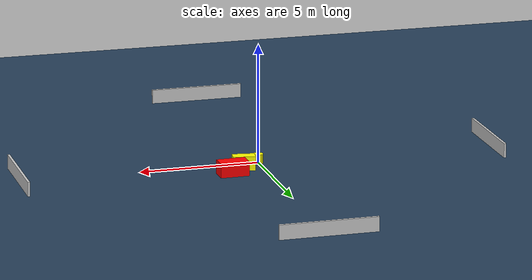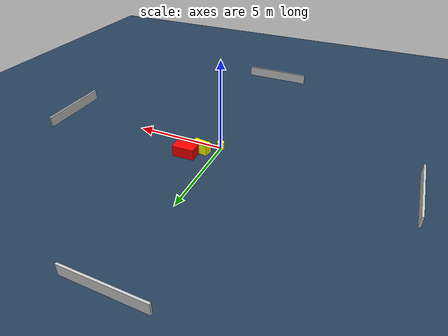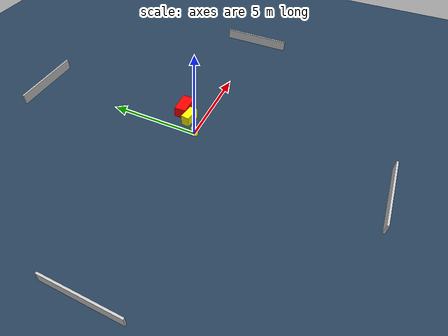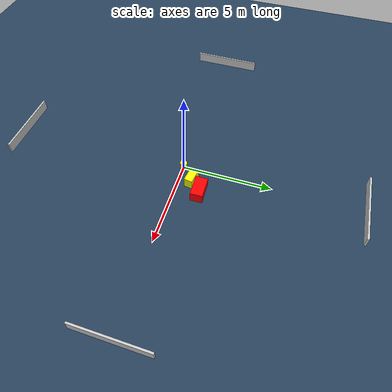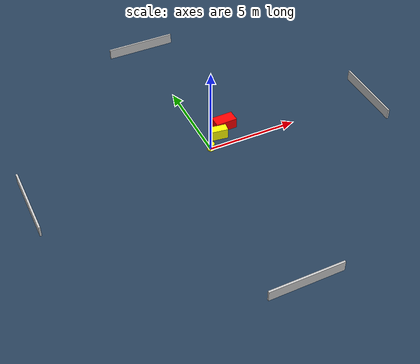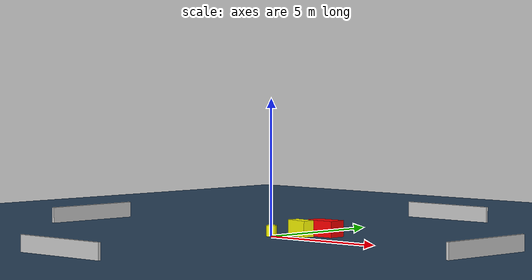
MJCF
<?xml version="1.0" ?>
<mujoco model="generated_environment">
  <option timestep="0.01" integrator="RK4" cone="elliptic"/>
  <default>
    <geom density="1"/>
  </default>
  <asset>
    <texture builtin="gradient" height="3072" name="skybox" rgb1="0.3 0.5 0.7" rgb2="0 0 0" type="skybox" width="512"/>
    <texture builtin="checker" height="300" name="groundplane" rgb1="0.2 0.3 0.4" rgb2="0.1 0.2 0.3" type="2d" width="300"/>
    <material name="groundplane" reflectance="0.2" texrepeat="5 5" texture="groundplane"/>
  </asset>
  <worldbody>
    <light dir="0 0 -1" directional="true" pos="0 0 1.5"/>
    <geom condim="3" friction="0.5 0.005 0.001" material="groundplane" name="floor" pos="0 0 0" size="0 0 0.05" type="plane"/>
    <body name="walls">
      <geom name="wall_1" condim="4" pos="-10.0 0.0 0.3" rgba="0.800000011920929 0.800000011920929 0.800000011920929 1.0" size="0.05 2.0 0.3" type="box"/>
      <geom name="wall_2" condim="4" pos="10.0 0.0 0.3" rgba="0.800000011920929 0.800000011920929 0.800000011920929 1.0" size="0.05 2.0 0.3" type="box"/>
      <geom name="wall_3" condim="4" pos="0.0 -10.0 0.3" rgba="0.800000011920929 0.800000011920929 0.800000011920929 1.0" size="2.0 0.05 0.3" type="box"/>
      <geom name="wall_4" condim="4" pos="0.0 10.0 0.3" rgba="0.800000011920929 0.800000011920929 0.800000011920929 1.0" size="2.0 0.05 0.3" type="box"/>
    </body>
    <body name="robot">
      <joint name="joint_x" type="slide" pos="0 0 0" axis="1 0 0"/>
      <joint name="joint_y" type="slide" pos="0 0 0" axis="0 1 0"/>
      <geom name="robot" type="cylinder" pos="0.0 0.0 0.2" size="0.2 0.2 0.0" mass="5.0" friction="1.0 0.005 0.0001" condim="4" rgba="1.0 1.0 0.0 1.0"/>
    </body>
    <body name="obstacle_1_movable">
      <geom name="obstacle_1_movable" condim="4" pos="0.8142332722916689 0.7063071413434101 0.3" euler="0 0 172.18080499180238" friction="0.0 0.005 0.001" rgba="1.0 1.0 0.0 1.0" size="0.45936505335112526 0.22867940179736124 0.3" type="box" mass="0.1"/>
      <joint type="free"/>
    </body>
    <body name="obstacle_2_static">
      <geom name="obstacle_2_static" condim="4" pos="1.4396598639656992 1.3211276710242377 0.3" euler="0 0 91.27890171165576" friction="0.0 0.005 0.001" rgba="1.0 0.0 0.0 1.0" size="0.3383468931717344 0.6037374806578912 0.3" type="box"/>
    </body>
  </worldbody>
  <actuator>
    <motor name="actuator_x" joint="joint_x" gear="1" ctrlrange="-1 1"/>
    <motor name="actuator_y" joint="joint_y" gear="1" ctrlrange="-1 1"/>
  </actuator>
</mujoco>
